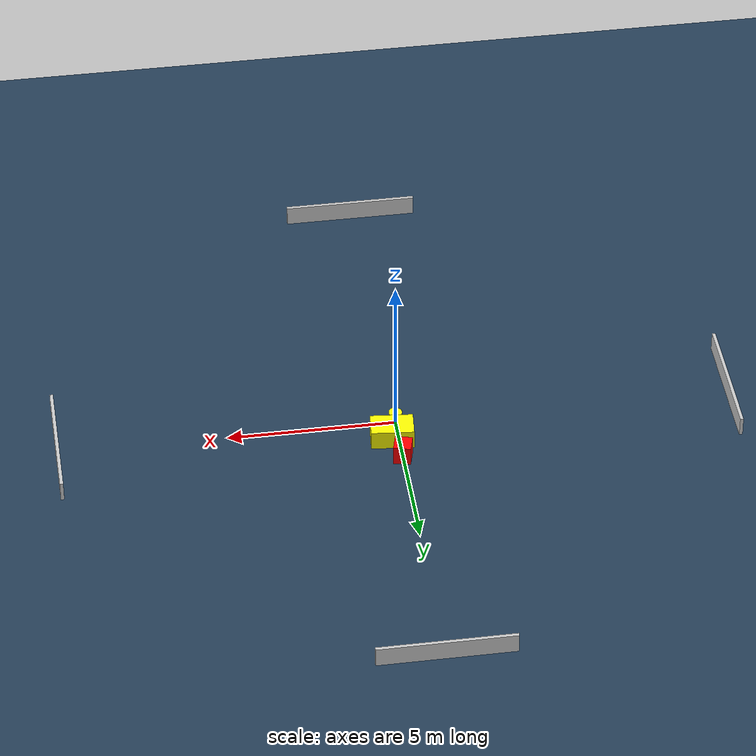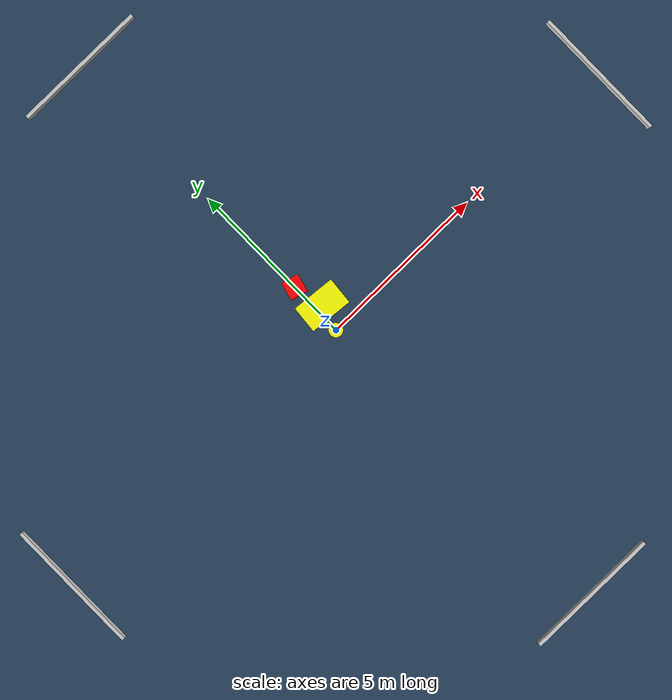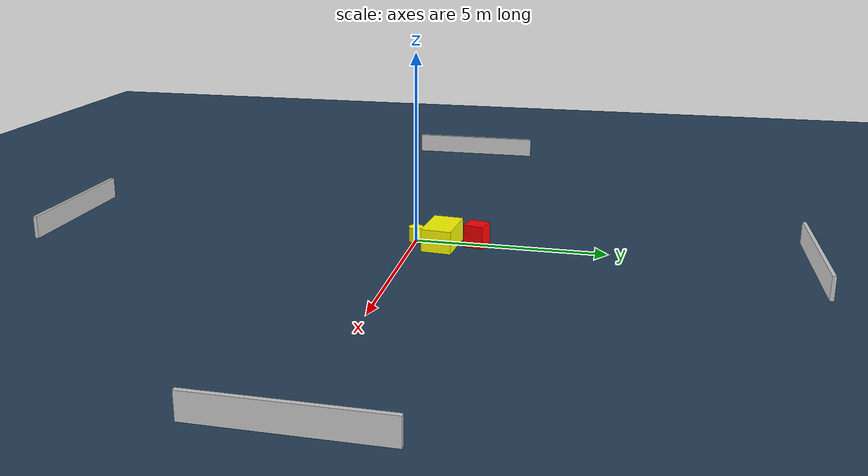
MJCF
<?xml version="1.0" ?>
<mujoco model="generated_environment">
  <option timestep="0.01" integrator="RK4" cone="elliptic"/>
  <default>
    <geom density="1"/>
  </default>
  <asset>
    <texture builtin="gradient" height="3072" name="skybox" rgb1="0.3 0.5 0.7" rgb2="0 0 0" type="skybox" width="512"/>
    <texture builtin="checker" height="300" name="groundplane" rgb1="0.2 0.3 0.4" rgb2="0.1 0.2 0.3" type="2d" width="300"/>
    <material name="groundplane" reflectance="0.2" texrepeat="5 5" texture="groundplane"/>
  </asset>
  <worldbody>
    <light dir="0 0 -1" directional="true" pos="0 0 1.5"/>
    <geom condim="3" friction="0.5 0.005 0.001" material="groundplane" name="floor" pos="0 0 0" size="0 0 0.05" type="plane"/>
    <body name="walls">
      <geom name="wall_1" condim="4" pos="-10.0 0.0 0.3" rgba="0.800000011920929 0.800000011920929 0.800000011920929 1.0" size="0.05 2.0 0.3" type="box"/>
      <geom name="wall_2" condim="4" pos="10.0 0.0 0.3" rgba="0.800000011920929 0.800000011920929 0.800000011920929 1.0" size="0.05 2.0 0.3" type="box"/>
      <geom name="wall_3" condim="4" pos="0.0 -10.0 0.3" rgba="0.800000011920929 0.800000011920929 0.800000011920929 1.0" size="2.0 0.05 0.3" type="box"/>
      <geom name="wall_4" condim="4" pos="0.0 10.0 0.3" rgba="0.800000011920929 0.800000011920929 0.800000011920929 1.0" size="2.0 0.05 0.3" type="box"/>
    </body>
    <body name="robot">
      <joint name="joint_x" type="slide" pos="0 0 0" axis="1 0 0"/>
      <joint name="joint_y" type="slide" pos="0 0 0" axis="0 1 0"/>
      <geom name="robot" type="cylinder" pos="0.0 0.0 0.2" size="0.2 0.2 0.0" mass="5.0" friction="1.0 0.005 0.0001" condim="4" rgba="1.0 1.0 0.0 1.0"/>
    </body>
    <body name="obstacle_1_movable">
      <geom name="obstacle_1_movable" condim="4" pos="0.20245966486398628 0.7429447114200948 0.3" euler="0 0 264.9512428471362" friction="0.0 0.005 0.001" rgba="1.0 1.0 0.0 1.0" size="0.3980422991732332 0.6336988067048243 0.3" type="box" mass="0.1"/>
      <joint type="free"/>
    </body>
    <body name="obstacle_2_static">
      <geom name="obstacle_2_static" condim="4" pos="0.007924631617568336 1.6221046449263983 0.3" euler="0 0 346.10206772819816" friction="0.0 0.005 0.001" rgba="1.0 0.0 0.0 1.0" size="0.2579959097493876 0.2666104413595429 0.3" type="box"/>
    </body>
  </worldbody>
  <actuator>
    <motor name="actuator_x" joint="joint_x" gear="1" ctrlrange="-1 1"/>
    <motor name="actuator_y" joint="joint_y" gear="1" ctrlrange="-1 1"/>
  </actuator>
</mujoco>
